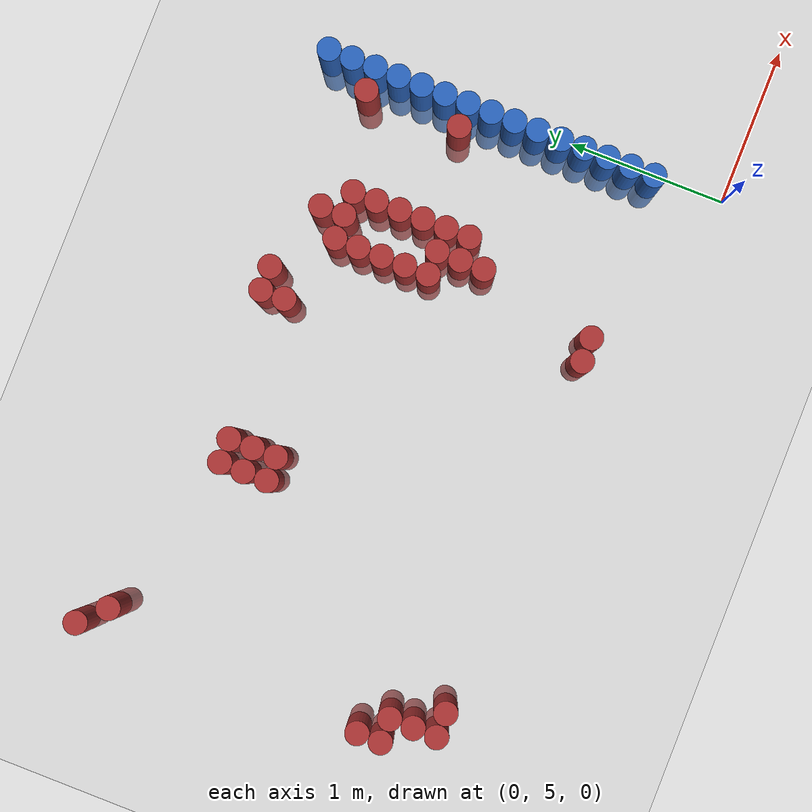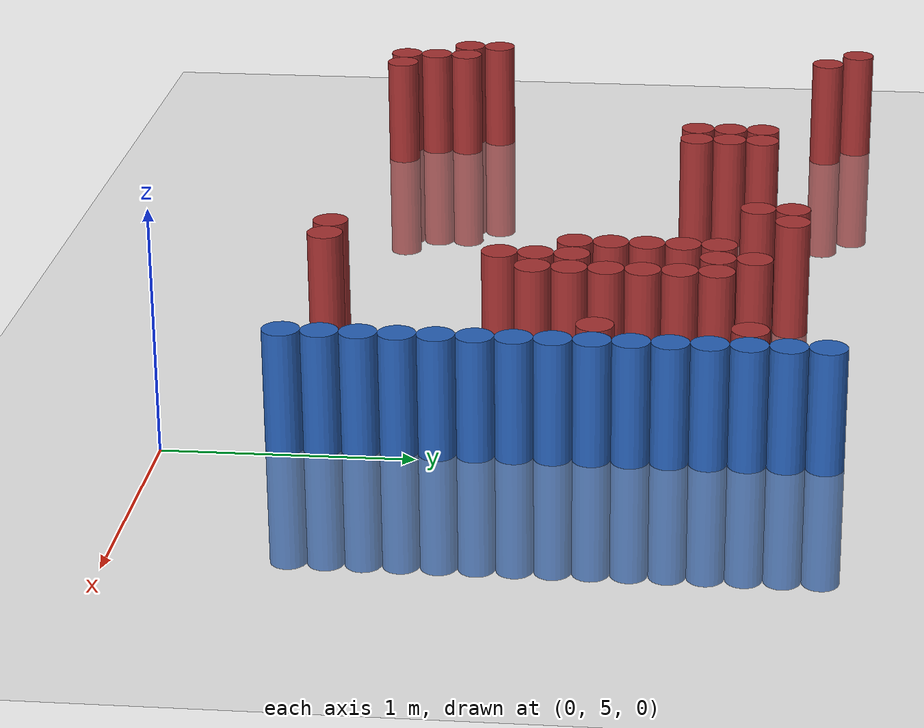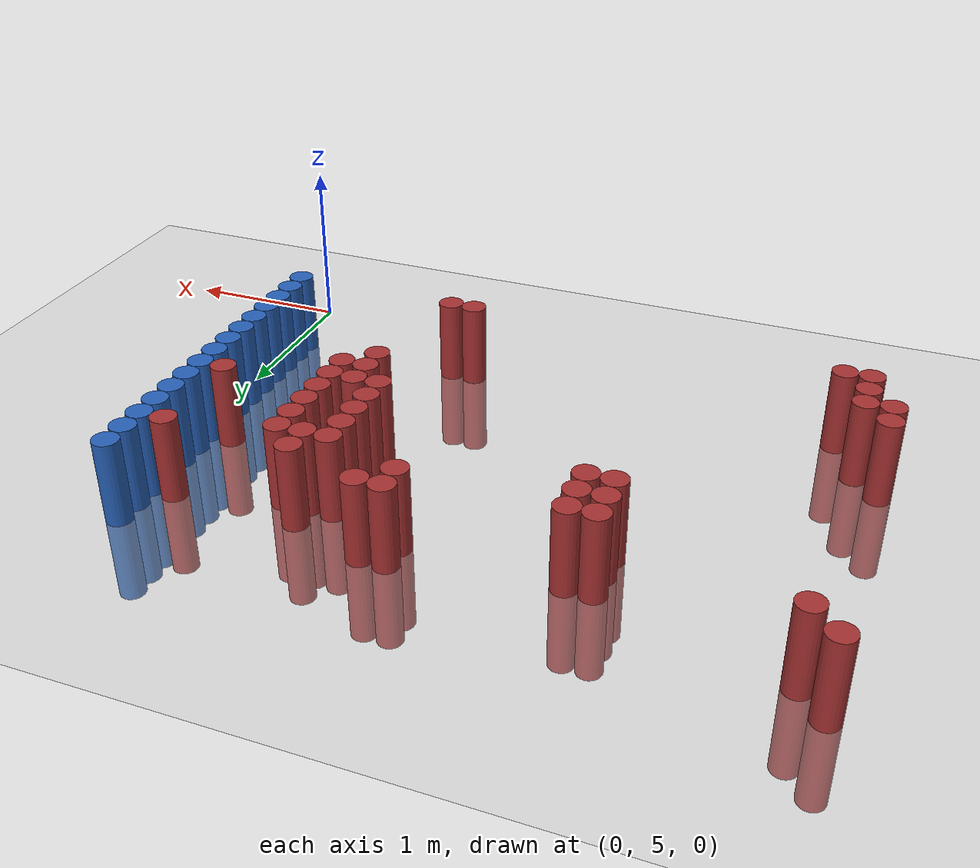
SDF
<sdf version="1.6">
 <world name="default">
  <model name="ground_plane">
   <static>1</static>
   <link name="link">
    <collision name="collision">
     <geometry><plane><normal>0 0 1</normal><size>100 100</size></plane></geometry>
     <surface><friction><ode><mu>100</mu><mu2>50</mu2></ode></friction></surface>
    </collision>
    <visual name="visual">
     <cast_shadows>0</cast_shadows>
     <geometry><plane><normal>0 0 1</normal><size>100 100</size></plane></geometry>
     <material>
      <script><uri>file://media/materials/scripts/gazebo.material</uri><name>Gazebo/Grey</name></script>
     </material>
    </visual>
   </link>
  </model>
  <model name="unit_cylinder_152">
   <static>1</static>
   <pose>-3.825000 5.775000 0.000000 0.000000 0.000000 0.000000</pose>
   <link name="link">
    <inertial>
     <mass>1</mass>
     <inertia><ixx>0.145833</ixx><ixy>0</ixy><ixz>0</ixz><iyy>0.145833</iyy><iyz>0</iyz><izz>0.125</izz></inertia>
    </inertial>
    <collision name="collision">
     <geometry><cylinder><radius>0.075000</radius><length>1</length></cylinder></geometry>
    </collision>
    <visual name="visual">
     <geometry><cylinder><radius>0.075000</radius><length>1</length></cylinder></geometry>
     <material>
      <ambient>0.648000 0.192000 0.192000 1</ambient>
      <diffuse>0.648000 0.192000 0.192000 1</diffuse>
     </material>
     <material>
      <script><name>Gazebo/Grey</name><uri>file://media/materials/scripts/gazebo.material</uri></script>
     </material>
    </visual>
   </link>
  </model>
  <model name="unit_cylinder_153">
   <static>1</static>
   <pose>-3.825000 5.925000 0.000000 0.000000 0.000000 0.000000</pose>
   <link name="link">
    <inertial>
     <mass>1</mass>
     <inertia><ixx>0.145833</ixx><ixy>0</ixy><ixz>0</ixz><iyy>0.145833</iyy><iyz>0</iyz><izz>0.125</izz></inertia>
    </inertial>
    <collision name="collision">
     <geometry><cylinder><radius>0.075000</radius><length>1</length></cylinder></geometry>
    </collision>
    <visual name="visual">
     <geometry><cylinder><radius>0.075000</radius><length>1</length></cylinder></geometry>
     <material>
      <ambient>0.648000 0.192000 0.192000 1</ambient>
      <diffuse>0.648000 0.192000 0.192000 1</diffuse>
     </material>
     <material>
      <script><name>Gazebo/Grey</name><uri>file://media/materials/scripts/gazebo.material</uri></script>
     </material>
    </visual>
   </link>
  </model>
  <model name="unit_cylinder_154">
   <static>1</static>
   <pose>-3.825000 7.725000 0.000000 0.000000 0.000000 0.000000</pose>
   <link name="link">
    <inertial>
     <mass>1</mass>
     <inertia><ixx>0.145833</ixx><ixy>0</ixy><ixz>0</ixz><iyy>0.145833</iyy><iyz>0</iyz><izz>0.125</izz></inertia>
    </inertial>
    <collision name="collision">
     <geometry><cylinder><radius>0.075000</radius><length>1</length></cylinder></geometry>
    </collision>
    <visual name="visual">
     <geometry><cylinder><radius>0.075000</radius><length>1</length></cylinder></geometry>
     <material>
      <ambient>0.648000 0.192000 0.192000 1</ambient>
      <diffuse>0.648000 0.192000 0.192000 1</diffuse>
     </material>
     <material>
      <script><name>Gazebo/Grey</name><uri>file://media/materials/scripts/gazebo.material</uri></script>
     </material>
    </visual>
   </link>
  </model>
  <model name="unit_cylinder_158">
   <static>1</static>
   <pose>-3.675000 5.475000 0.000000 0.000000 0.000000 0.000000</pose>
   <link name="link">
    <inertial>
     <mass>1</mass>
     <inertia><ixx>0.145833</ixx><ixy>0</ixy><ixz>0</ixz><iyy>0.145833</iyy><iyz>0</iyz><izz>0.125</izz></inertia>
    </inertial>
    <collision name="collision">
     <geometry><cylinder><radius>0.075000</radius><length>1</length></cylinder></geometry>
    </collision>
    <visual name="visual">
     <geometry><cylinder><radius>0.075000</radius><length>1</length></cylinder></geometry>
     <material>
      <ambient>0.648000 0.192000 0.192000 1</ambient>
      <diffuse>0.648000 0.192000 0.192000 1</diffuse>
     </material>
     <material>
      <script><name>Gazebo/Grey</name><uri>file://media/materials/scripts/gazebo.material</uri></script>
     </material>
    </visual>
   </link>
  </model>
  <model name="unit_cylinder_159">
   <static>1</static>
   <pose>-3.675000 5.625000 0.000000 0.000000 0.000000 0.000000</pose>
   <link name="link">
    <inertial>
     <mass>1</mass>
     <inertia><ixx>0.145833</ixx><ixy>0</ixy><ixz>0</ixz><iyy>0.145833</iyy><iyz>0</iyz><izz>0.125</izz></inertia>
    </inertial>
    <collision name="collision">
     <geometry><cylinder><radius>0.075000</radius><length>1</length></cylinder></geometry>
    </collision>
    <visual name="visual">
     <geometry><cylinder><radius>0.075000</radius><length>1</length></cylinder></geometry>
     <material>
      <ambient>0.648000 0.192000 0.192000 1</ambient>
      <diffuse>0.648000 0.192000 0.192000 1</diffuse>
     </material>
     <material>
      <script><name>Gazebo/Grey</name><uri>file://media/materials/scripts/gazebo.material</uri></script>
     </material>
    </visual>
   </link>
  </model>
  <model name="unit_cylinder_160">
   <static>1</static>
   <pose>-3.675000 5.775000 0.000000 0.000000 0.000000 0.000000</pose>
   <link name="link">
    <inertial>
     <mass>1</mass>
     <inertia><ixx>0.145833</ixx><ixy>0</ixy><ixz>0</ixz><iyy>0.145833</iyy><iyz>0</iyz><izz>0.125</izz></inertia>
    </inertial>
    <collision name="collision">
     <geometry><cylinder><radius>0.075000</radius><length>1</length></cylinder></geometry>
    </collision>
    <visual name="visual">
     <geometry><cylinder><radius>0.075000</radius><length>1</length></cylinder></geometry>
     <material>
      <ambient>0.648000 0.192000 0.192000 1</ambient>
      <diffuse>0.648000 0.192000 0.192000 1</diffuse>
     </material>
     <material>
      <script><name>Gazebo/Grey</name><uri>file://media/materials/scripts/gazebo.material</uri></script>
     </material>
    </visual>
   </link>
  </model>
  <model name="unit_cylinder_161">
   <static>1</static>
   <pose>-3.675000 7.575000 0.000000 0.000000 0.000000 0.000000</pose>
   <link name="link">
    <inertial>
     <mass>1</mass>
     <inertia><ixx>0.145833</ixx><ixy>0</ixy><ixz>0</ixz><iyy>0.145833</iyy><iyz>0</iyz><izz>0.125</izz></inertia>
    </inertial>
    <collision name="collision">
     <geometry><cylinder><radius>0.075000</radius><length>1</length></cylinder></geometry>
    </collision>
    <visual name="visual">
     <geometry><cylinder><radius>0.075000</radius><length>1</length></cylinder></geometry>
     <material>
      <ambient>0.648000 0.192000 0.192000 1</ambient>
      <diffuse>0.648000 0.192000 0.192000 1</diffuse>
     </material>
     <material>
      <script><name>Gazebo/Grey</name><uri>file://media/materials/scripts/gazebo.material</uri></script>
     </material>
    </visual>
   </link>
  </model>
  <model name="unit_cylinder_164">
   <static>1</static>
   <pose>-3.525000 5.475000 0.000000 0.000000 0.000000 0.000000</pose>
   <link name="link">
    <inertial>
     <mass>1</mass>
     <inertia><ixx>0.145833</ixx><ixy>0</ixy><ixz>0</ixz><iyy>0.145833</iyy><iyz>0</iyz><izz>0.125</izz></inertia>
    </inertial>
    <collision name="collision">
     <geometry><cylinder><radius>0.075000</radius><length>1</length></cylinder></geometry>
    </collision>
    <visual name="visual">
     <geometry><cylinder><radius>0.075000</radius><length>1</length></cylinder></geometry>
     <material>
      <ambient>0.648000 0.192000 0.192000 1</ambient>
      <diffuse>0.648000 0.192000 0.192000 1</diffuse>
     </material>
     <material>
      <script><name>Gazebo/Grey</name><uri>file://media/materials/scripts/gazebo.material</uri></script>
     </material>
    </visual>
   </link>
  </model>
  <model name="unit_cylinder_171">
   <static>1</static>
   <pose>-2.625000 6.975000 0.000000 0.000000 0.000000 0.000000</pose>
   <link name="link">
    <inertial>
     <mass>1</mass>
     <inertia><ixx>0.145833</ixx><ixy>0</ixy><ixz>0</ixz><iyy>0.145833</iyy><iyz>0</iyz><izz>0.125</izz></inertia>
    </inertial>
    <collision name="collision">
     <geometry><cylinder><radius>0.075000</radius><length>1</length></cylinder></geometry>
    </collision>
    <visual name="visual">
     <geometry><cylinder><radius>0.075000</radius><length>1</length></cylinder></geometry>
     <material>
      <ambient>0.648000 0.192000 0.192000 1</ambient>
      <diffuse>0.648000 0.192000 0.192000 1</diffuse>
     </material>
     <material>
      <script><name>Gazebo/Grey</name><uri>file://media/materials/scripts/gazebo.material</uri></script>
     </material>
    </visual>
   </link>
  </model>
  <model name="unit_cylinder_172">
   <static>1</static>
   <pose>-2.625000 7.125000 0.000000 0.000000 0.000000 0.000000</pose>
   <link name="link">
    <inertial>
     <mass>1</mass>
     <inertia><ixx>0.145833</ixx><ixy>0</ixy><ixz>0</ixz><iyy>0.145833</iyy><iyz>0</iyz><izz>0.125</izz></inertia>
    </inertial>
    <collision name="collision">
     <geometry><cylinder><radius>0.075000</radius><length>1</length></cylinder></geometry>
    </collision>
    <visual name="visual">
     <geometry><cylinder><radius>0.075000</radius><length>1</length></cylinder></geometry>
     <material>
      <ambient>0.648000 0.192000 0.192000 1</ambient>
      <diffuse>0.648000 0.192000 0.192000 1</diffuse>
     </material>
     <material>
      <script><name>Gazebo/Grey</name><uri>file://media/materials/scripts/gazebo.material</uri></script>
     </material>
    </visual>
   </link>
  </model>
  <model name="unit_cylinder_173">
   <static>1</static>
   <pose>-2.625000 7.275000 0.000000 0.000000 0.000000 0.000000</pose>
   <link name="link">
    <inertial>
     <mass>1</mass>
     <inertia><ixx>0.145833</ixx><ixy>0</ixy><ixz>0</ixz><iyy>0.145833</iyy><iyz>0</iyz><izz>0.125</izz></inertia>
    </inertial>
    <collision name="collision">
     <geometry><cylinder><radius>0.075000</radius><length>1</length></cylinder></geometry>
    </collision>
    <visual name="visual">
     <geometry><cylinder><radius>0.075000</radius><length>1</length></cylinder></geometry>
     <material>
      <ambient>0.648000 0.192000 0.192000 1</ambient>
      <diffuse>0.648000 0.192000 0.192000 1</diffuse>
     </material>
     <material>
      <script><name>Gazebo/Grey</name><uri>file://media/materials/scripts/gazebo.material</uri></script>
     </material>
    </visual>
   </link>
  </model>
  <model name="unit_cylinder_174">
   <static>1</static>
   <pose>-2.475000 6.975000 0.000000 0.000000 0.000000 0.000000</pose>
   <link name="link">
    <inertial>
     <mass>1</mass>
     <inertia><ixx>0.145833</ixx><ixy>0</ixy><ixz>0</ixz><iyy>0.145833</iyy><iyz>0</iyz><izz>0.125</izz></inertia>
    </inertial>
    <collision name="collision">
     <geometry><cylinder><radius>0.075000</radius><length>1</length></cylinder></geometry>
    </collision>
    <visual name="visual">
     <geometry><cylinder><radius>0.075000</radius><length>1</length></cylinder></geometry>
     <material>
      <ambient>0.648000 0.192000 0.192000 1</ambient>
      <diffuse>0.648000 0.192000 0.192000 1</diffuse>
     </material>
     <material>
      <script><name>Gazebo/Grey</name><uri>file://media/materials/scripts/gazebo.material</uri></script>
     </material>
    </visual>
   </link>
  </model>
  <model name="unit_cylinder_175">
   <static>1</static>
   <pose>-2.475000 7.125000 0.000000 0.000000 0.000000 0.000000</pose>
   <link name="link">
    <inertial>
     <mass>1</mass>
     <inertia><ixx>0.145833</ixx><ixy>0</ixy><ixz>0</ixz><iyy>0.145833</iyy><iyz>0</iyz><izz>0.125</izz></inertia>
    </inertial>
    <collision name="collision">
     <geometry><cylinder><radius>0.075000</radius><length>1</length></cylinder></geometry>
    </collision>
    <visual name="visual">
     <geometry><cylinder><radius>0.075000</radius><length>1</length></cylinder></geometry>
     <material>
      <ambient>0.648000 0.192000 0.192000 1</ambient>
      <diffuse>0.648000 0.192000 0.192000 1</diffuse>
     </material>
     <material>
      <script><name>Gazebo/Grey</name><uri>file://media/materials/scripts/gazebo.material</uri></script>
     </material>
    </visual>
   </link>
  </model>
  <model name="unit_cylinder_176">
   <static>1</static>
   <pose>-2.475000 7.275000 0.000000 0.000000 0.000000 0.000000</pose>
   <link name="link">
    <inertial>
     <mass>1</mass>
     <inertia><ixx>0.145833</ixx><ixy>0</ixy><ixz>0</ixz><iyy>0.145833</iyy><iyz>0</iyz><izz>0.125</izz></inertia>
    </inertial>
    <collision name="collision">
     <geometry><cylinder><radius>0.075000</radius><length>1</length></cylinder></geometry>
    </collision>
    <visual name="visual">
     <geometry><cylinder><radius>0.075000</radius><length>1</length></cylinder></geometry>
     <material>
      <ambient>0.648000 0.192000 0.192000 1</ambient>
      <diffuse>0.648000 0.192000 0.192000 1</diffuse>
     </material>
     <material>
      <script><name>Gazebo/Grey</name><uri>file://media/materials/scripts/gazebo.material</uri></script>
     </material>
    </visual>
   </link>
  </model>
  <model name="unit_cylinder_179">
   <static>1</static>
   <pose>-1.575000 7.275000 0.000000 0.000000 0.000000 0.000000</pose>
   <link name="link">
    <inertial>
     <mass>1</mass>
     <inertia><ixx>0.145833</ixx><ixy>0</ixy><ixz>0</ixz><iyy>0.145833</iyy><iyz>0</iyz><izz>0.125</izz></inertia>
    </inertial>
    <collision name="collision">
     <geometry><cylinder><radius>0.075000</radius><length>1</length></cylinder></geometry>
    </collision>
    <visual name="visual">
     <geometry><cylinder><radius>0.075000</radius><length>1</length></cylinder></geometry>
     <material>
      <ambient>0.648000 0.192000 0.192000 1</ambient>
      <diffuse>0.648000 0.192000 0.192000 1</diffuse>
     </material>
     <material>
      <script><name>Gazebo/Grey</name><uri>file://media/materials/scripts/gazebo.material</uri></script>
     </material>
    </visual>
   </link>
  </model>
  <model name="unit_cylinder_180">
   <static>1</static>
   <pose>-1.575000 7.425000 0.000000 0.000000 0.000000 0.000000</pose>
   <link name="link">
    <inertial>
     <mass>1</mass>
     <inertia><ixx>0.145833</ixx><ixy>0</ixy><ixz>0</ixz><iyy>0.145833</iyy><iyz>0</iyz><izz>0.125</izz></inertia>
    </inertial>
    <collision name="collision">
     <geometry><cylinder><radius>0.075000</radius><length>1</length></cylinder></geometry>
    </collision>
    <visual name="visual">
     <geometry><cylinder><radius>0.075000</radius><length>1</length></cylinder></geometry>
     <material>
      <ambient>0.648000 0.192000 0.192000 1</ambient>
      <diffuse>0.648000 0.192000 0.192000 1</diffuse>
     </material>
     <material>
      <script><name>Gazebo/Grey</name><uri>file://media/materials/scripts/gazebo.material</uri></script>
     </material>
    </visual>
   </link>
  </model>
  <model name="unit_cylinder_183">
   <static>1</static>
   <pose>-1.425000 7.425000 0.000000 0.000000 0.000000 0.000000</pose>
   <link name="link">
    <inertial>
     <mass>1</mass>
     <inertia><ixx>0.145833</ixx><ixy>0</ixy><ixz>0</ixz><iyy>0.145833</iyy><iyz>0</iyz><izz>0.125</izz></inertia>
    </inertial>
    <collision name="collision">
     <geometry><cylinder><radius>0.075000</radius><length>1</length></cylinder></geometry>
    </collision>
    <visual name="visual">
     <geometry><cylinder><radius>0.075000</radius><length>1</length></cylinder></geometry>
     <material>
      <ambient>0.648000 0.192000 0.192000 1</ambient>
      <diffuse>0.648000 0.192000 0.192000 1</diffuse>
     </material>
     <material>
      <script><name>Gazebo/Grey</name><uri>file://media/materials/scripts/gazebo.material</uri></script>
     </material>
    </visual>
   </link>
  </model>
  <model name="unit_cylinder_185">
   <static>1</static>
   <pose>-1.275000 5.475000 0.000000 0.000000 0.000000 0.000000</pose>
   <link name="link">
    <inertial>
     <mass>1</mass>
     <inertia><ixx>0.145833</ixx><ixy>0</ixy><ixz>0</ixz><iyy>0.145833</iyy><iyz>0</iyz><izz>0.125</izz></inertia>
    </inertial>
    <collision name="collision">
     <geometry><cylinder><radius>0.075000</radius><length>1</length></cylinder></geometry>
    </collision>
    <visual name="visual">
     <geometry><cylinder><radius>0.075000</radius><length>1</length></cylinder></geometry>
     <material>
      <ambient>0.648000 0.192000 0.192000 1</ambient>
      <diffuse>0.648000 0.192000 0.192000 1</diffuse>
     </material>
     <material>
      <script><name>Gazebo/Grey</name><uri>file://media/materials/scripts/gazebo.material</uri></script>
     </material>
    </visual>
   </link>
  </model>
  <model name="unit_cylinder_188">
   <static>1</static>
   <pose>-1.125000 5.475000 0.000000 0.000000 0.000000 0.000000</pose>
   <link name="link">
    <inertial>
     <mass>1</mass>
     <inertia><ixx>0.145833</ixx><ixy>0</ixy><ixz>0</ixz><iyy>0.145833</iyy><iyz>0</iyz><izz>0.125</izz></inertia>
    </inertial>
    <collision name="collision">
     <geometry><cylinder><radius>0.075000</radius><length>1</length></cylinder></geometry>
    </collision>
    <visual name="visual">
     <geometry><cylinder><radius>0.075000</radius><length>1</length></cylinder></geometry>
     <material>
      <ambient>0.648000 0.192000 0.192000 1</ambient>
      <diffuse>0.648000 0.192000 0.192000 1</diffuse>
     </material>
     <material>
      <script><name>Gazebo/Grey</name><uri>file://media/materials/scripts/gazebo.material</uri></script>
     </material>
    </visual>
   </link>
  </model>
  <model name="unit_cylinder_189">
   <static>1</static>
   <pose>-1.125000 6.525000 0.000000 0.000000 0.000000 0.000000</pose>
   <link name="link">
    <inertial>
     <mass>1</mass>
     <inertia><ixx>0.145833</ixx><ixy>0</ixy><ixz>0</ixz><iyy>0.145833</iyy><iyz>0</iyz><izz>0.125</izz></inertia>
    </inertial>
    <collision name="collision">
     <geometry><cylinder><radius>0.075000</radius><length>1</length></cylinder></geometry>
    </collision>
    <visual name="visual">
     <geometry><cylinder><radius>0.075000</radius><length>1</length></cylinder></geometry>
     <material>
      <ambient>0.648000 0.192000 0.192000 1</ambient>
      <diffuse>0.648000 0.192000 0.192000 1</diffuse>
     </material>
     <material>
      <script><name>Gazebo/Grey</name><uri>file://media/materials/scripts/gazebo.material</uri></script>
     </material>
    </visual>
   </link>
  </model>
  <model name="unit_cylinder_190">
   <static>1</static>
   <pose>-1.125000 6.675000 0.000000 0.000000 0.000000 0.000000</pose>
   <link name="link">
    <inertial>
     <mass>1</mass>
     <inertia><ixx>0.145833</ixx><ixy>0</ixy><ixz>0</ixz><iyy>0.145833</iyy><iyz>0</iyz><izz>0.125</izz></inertia>
    </inertial>
    <collision name="collision">
     <geometry><cylinder><radius>0.075000</radius><length>1</length></cylinder></geometry>
    </collision>
    <visual name="visual">
     <geometry><cylinder><radius>0.075000</radius><length>1</length></cylinder></geometry>
     <material>
      <ambient>0.648000 0.192000 0.192000 1</ambient>
      <diffuse>0.648000 0.192000 0.192000 1</diffuse>
     </material>
     <material>
      <script><name>Gazebo/Grey</name><uri>file://media/materials/scripts/gazebo.material</uri></script>
     </material>
    </visual>
   </link>
  </model>
  <model name="unit_cylinder_191">
   <static>1</static>
   <pose>-1.125000 6.825000 0.000000 0.000000 0.000000 0.000000</pose>
   <link name="link">
    <inertial>
     <mass>1</mass>
     <inertia><ixx>0.145833</ixx><ixy>0</ixy><ixz>0</ixz><iyy>0.145833</iyy><iyz>0</iyz><izz>0.125</izz></inertia>
    </inertial>
    <collision name="collision">
     <geometry><cylinder><radius>0.075000</radius><length>1</length></cylinder></geometry>
    </collision>
    <visual name="visual">
     <geometry><cylinder><radius>0.075000</radius><length>1</length></cylinder></geometry>
     <material>
      <ambient>0.648000 0.192000 0.192000 1</ambient>
      <diffuse>0.648000 0.192000 0.192000 1</diffuse>
     </material>
     <material>
      <script><name>Gazebo/Grey</name><uri>file://media/materials/scripts/gazebo.material</uri></script>
     </material>
    </visual>
   </link>
  </model>
  <model name="unit_cylinder_192">
   <static>1</static>
   <pose>-1.125000 6.975000 0.000000 0.000000 0.000000 0.000000</pose>
   <link name="link">
    <inertial>
     <mass>1</mass>
     <inertia><ixx>0.145833</ixx><ixy>0</ixy><ixz>0</ixz><iyy>0.145833</iyy><iyz>0</iyz><izz>0.125</izz></inertia>
    </inertial>
    <collision name="collision">
     <geometry><cylinder><radius>0.075000</radius><length>1</length></cylinder></geometry>
    </collision>
    <visual name="visual">
     <geometry><cylinder><radius>0.075000</radius><length>1</length></cylinder></geometry>
     <material>
      <ambient>0.648000 0.192000 0.192000 1</ambient>
      <diffuse>0.648000 0.192000 0.192000 1</diffuse>
     </material>
     <material>
      <script><name>Gazebo/Grey</name><uri>file://media/materials/scripts/gazebo.material</uri></script>
     </material>
    </visual>
   </link>
  </model>
  <model name="unit_cylinder_193">
   <static>1</static>
   <pose>-1.125000 7.125000 0.000000 0.000000 0.000000 0.000000</pose>
   <link name="link">
    <inertial>
     <mass>1</mass>
     <inertia><ixx>0.145833</ixx><ixy>0</ixy><ixz>0</ixz><iyy>0.145833</iyy><iyz>0</iyz><izz>0.125</izz></inertia>
    </inertial>
    <collision name="collision">
     <geometry><cylinder><radius>0.075000</radius><length>1</length></cylinder></geometry>
    </collision>
    <visual name="visual">
     <geometry><cylinder><radius>0.075000</radius><length>1</length></cylinder></geometry>
     <material>
      <ambient>0.648000 0.192000 0.192000 1</ambient>
      <diffuse>0.648000 0.192000 0.192000 1</diffuse>
     </material>
     <material>
      <script><name>Gazebo/Grey</name><uri>file://media/materials/scripts/gazebo.material</uri></script>
     </material>
    </visual>
   </link>
  </model>
  <model name="unit_cylinder_196">
   <static>1</static>
   <pose>-0.975000 6.225000 0.000000 0.000000 0.000000 0.000000</pose>
   <link name="link">
    <inertial>
     <mass>1</mass>
     <inertia><ixx>0.145833</ixx><ixy>0</ixy><ixz>0</ixz><iyy>0.145833</iyy><iyz>0</iyz><izz>0.125</izz></inertia>
    </inertial>
    <collision name="collision">
     <geometry><cylinder><radius>0.075000</radius><length>1</length></cylinder></geometry>
    </collision>
    <visual name="visual">
     <geometry><cylinder><radius>0.075000</radius><length>1</length></cylinder></geometry>
     <material>
      <ambient>0.648000 0.192000 0.192000 1</ambient>
      <diffuse>0.648000 0.192000 0.192000 1</diffuse>
     </material>
     <material>
      <script><name>Gazebo/Grey</name><uri>file://media/materials/scripts/gazebo.material</uri></script>
     </material>
    </visual>
   </link>
  </model>
  <model name="unit_cylinder_197">
   <static>1</static>
   <pose>-0.975000 6.375000 0.000000 0.000000 0.000000 0.000000</pose>
   <link name="link">
    <inertial>
     <mass>1</mass>
     <inertia><ixx>0.145833</ixx><ixy>0</ixy><ixz>0</ixz><iyy>0.145833</iyy><iyz>0</iyz><izz>0.125</izz></inertia>
    </inertial>
    <collision name="collision">
     <geometry><cylinder><radius>0.075000</radius><length>1</length></cylinder></geometry>
    </collision>
    <visual name="visual">
     <geometry><cylinder><radius>0.075000</radius><length>1</length></cylinder></geometry>
     <material>
      <ambient>0.648000 0.192000 0.192000 1</ambient>
      <diffuse>0.648000 0.192000 0.192000 1</diffuse>
     </material>
     <material>
      <script><name>Gazebo/Grey</name><uri>file://media/materials/scripts/gazebo.material</uri></script>
     </material>
    </visual>
   </link>
  </model>
  <model name="unit_cylinder_198">
   <static>1</static>
   <pose>-0.975000 6.525000 0.000000 0.000000 0.000000 0.000000</pose>
   <link name="link">
    <inertial>
     <mass>1</mass>
     <inertia><ixx>0.145833</ixx><ixy>0</ixy><ixz>0</ixz><iyy>0.145833</iyy><iyz>0</iyz><izz>0.125</izz></inertia>
    </inertial>
    <collision name="collision">
     <geometry><cylinder><radius>0.075000</radius><length>1</length></cylinder></geometry>
    </collision>
    <visual name="visual">
     <geometry><cylinder><radius>0.075000</radius><length>1</length></cylinder></geometry>
     <material>
      <ambient>0.648000 0.192000 0.192000 1</ambient>
      <diffuse>0.648000 0.192000 0.192000 1</diffuse>
     </material>
     <material>
      <script><name>Gazebo/Grey</name><uri>file://media/materials/scripts/gazebo.material</uri></script>
     </material>
    </visual>
   </link>
  </model>
  <model name="unit_cylinder_199">
   <static>1</static>
   <pose>-0.975000 7.125000 0.000000 0.000000 0.000000 0.000000</pose>
   <link name="link">
    <inertial>
     <mass>1</mass>
     <inertia><ixx>0.145833</ixx><ixy>0</ixy><ixz>0</ixz><iyy>0.145833</iyy><iyz>0</iyz><izz>0.125</izz></inertia>
    </inertial>
    <collision name="collision">
     <geometry><cylinder><radius>0.075000</radius><length>1</length></cylinder></geometry>
    </collision>
    <visual name="visual">
     <geometry><cylinder><radius>0.075000</radius><length>1</length></cylinder></geometry>
     <material>
      <ambient>0.648000 0.192000 0.192000 1</ambient>
      <diffuse>0.648000 0.192000 0.192000 1</diffuse>
     </material>
     <material>
      <script><name>Gazebo/Grey</name><uri>file://media/materials/scripts/gazebo.material</uri></script>
     </material>
    </visual>
   </link>
  </model>
  <model name="unit_cylinder_200">
   <static>1</static>
   <pose>-0.975000 7.275000 0.000000 0.000000 0.000000 0.000000</pose>
   <link name="link">
    <inertial>
     <mass>1</mass>
     <inertia><ixx>0.145833</ixx><ixy>0</ixy><ixz>0</ixz><iyy>0.145833</iyy><iyz>0</iyz><izz>0.125</izz></inertia>
    </inertial>
    <collision name="collision">
     <geometry><cylinder><radius>0.075000</radius><length>1</length></cylinder></geometry>
    </collision>
    <visual name="visual">
     <geometry><cylinder><radius>0.075000</radius><length>1</length></cylinder></geometry>
     <material>
      <ambient>0.648000 0.192000 0.192000 1</ambient>
      <diffuse>0.648000 0.192000 0.192000 1</diffuse>
     </material>
     <material>
      <script><name>Gazebo/Grey</name><uri>file://media/materials/scripts/gazebo.material</uri></script>
     </material>
    </visual>
   </link>
  </model>
  <model name="unit_cylinder_201">
   <static>1</static>
   <pose>-0.825000 6.375000 0.000000 0.000000 0.000000 0.000000</pose>
   <link name="link">
    <inertial>
     <mass>1</mass>
     <inertia><ixx>0.145833</ixx><ixy>0</ixy><ixz>0</ixz><iyy>0.145833</iyy><iyz>0</iyz><izz>0.125</izz></inertia>
    </inertial>
    <collision name="collision">
     <geometry><cylinder><radius>0.075000</radius><length>1</length></cylinder></geometry>
    </collision>
    <visual name="visual">
     <geometry><cylinder><radius>0.075000</radius><length>1</length></cylinder></geometry>
     <material>
      <ambient>0.648000 0.192000 0.192000 1</ambient>
      <diffuse>0.648000 0.192000 0.192000 1</diffuse>
     </material>
     <material>
      <script><name>Gazebo/Grey</name><uri>file://media/materials/scripts/gazebo.material</uri></script>
     </material>
    </visual>
   </link>
  </model>
  <model name="unit_cylinder_202">
   <static>1</static>
   <pose>-0.825000 6.525000 0.000000 0.000000 0.000000 0.000000</pose>
   <link name="link">
    <inertial>
     <mass>1</mass>
     <inertia><ixx>0.145833</ixx><ixy>0</ixy><ixz>0</ixz><iyy>0.145833</iyy><iyz>0</iyz><izz>0.125</izz></inertia>
    </inertial>
    <collision name="collision">
     <geometry><cylinder><radius>0.075000</radius><length>1</length></cylinder></geometry>
    </collision>
    <visual name="visual">
     <geometry><cylinder><radius>0.075000</radius><length>1</length></cylinder></geometry>
     <material>
      <ambient>0.648000 0.192000 0.192000 1</ambient>
      <diffuse>0.648000 0.192000 0.192000 1</diffuse>
     </material>
     <material>
      <script><name>Gazebo/Grey</name><uri>file://media/materials/scripts/gazebo.material</uri></script>
     </material>
    </visual>
   </link>
  </model>
  <model name="unit_cylinder_203">
   <static>1</static>
   <pose>-0.825000 6.675000 0.000000 0.000000 0.000000 0.000000</pose>
   <link name="link">
    <inertial>
     <mass>1</mass>
     <inertia><ixx>0.145833</ixx><ixy>0</ixy><ixz>0</ixz><iyy>0.145833</iyy><iyz>0</iyz><izz>0.125</izz></inertia>
    </inertial>
    <collision name="collision">
     <geometry><cylinder><radius>0.075000</radius><length>1</length></cylinder></geometry>
    </collision>
    <visual name="visual">
     <geometry><cylinder><radius>0.075000</radius><length>1</length></cylinder></geometry>
     <material>
      <ambient>0.648000 0.192000 0.192000 1</ambient>
      <diffuse>0.648000 0.192000 0.192000 1</diffuse>
     </material>
     <material>
      <script><name>Gazebo/Grey</name><uri>file://media/materials/scripts/gazebo.material</uri></script>
     </material>
    </visual>
   </link>
  </model>
  <model name="unit_cylinder_204">
   <static>1</static>
   <pose>-0.825000 6.825000 0.000000 0.000000 0.000000 0.000000</pose>
   <link name="link">
    <inertial>
     <mass>1</mass>
     <inertia><ixx>0.145833</ixx><ixy>0</ixy><ixz>0</ixz><iyy>0.145833</iyy><iyz>0</iyz><izz>0.125</izz></inertia>
    </inertial>
    <collision name="collision">
     <geometry><cylinder><radius>0.075000</radius><length>1</length></cylinder></geometry>
    </collision>
    <visual name="visual">
     <geometry><cylinder><radius>0.075000</radius><length>1</length></cylinder></geometry>
     <material>
      <ambient>0.648000 0.192000 0.192000 1</ambient>
      <diffuse>0.648000 0.192000 0.192000 1</diffuse>
     </material>
     <material>
      <script><name>Gazebo/Grey</name><uri>file://media/materials/scripts/gazebo.material</uri></script>
     </material>
    </visual>
   </link>
  </model>
  <model name="unit_cylinder_205">
   <static>1</static>
   <pose>-0.825000 6.975000 0.000000 0.000000 0.000000 0.000000</pose>
   <link name="link">
    <inertial>
     <mass>1</mass>
     <inertia><ixx>0.145833</ixx><ixy>0</ixy><ixz>0</ixz><iyy>0.145833</iyy><iyz>0</iyz><izz>0.125</izz></inertia>
    </inertial>
    <collision name="collision">
     <geometry><cylinder><radius>0.075000</radius><length>1</length></cylinder></geometry>
    </collision>
    <visual name="visual">
     <geometry><cylinder><radius>0.075000</radius><length>1</length></cylinder></geometry>
     <material>
      <ambient>0.648000 0.192000 0.192000 1</ambient>
      <diffuse>0.648000 0.192000 0.192000 1</diffuse>
     </material>
     <material>
      <script><name>Gazebo/Grey</name><uri>file://media/materials/scripts/gazebo.material</uri></script>
     </material>
    </visual>
   </link>
  </model>
  <model name="unit_cylinder_206">
   <static>1</static>
   <pose>-0.825000 7.125000 0.000000 0.000000 0.000000 0.000000</pose>
   <link name="link">
    <inertial>
     <mass>1</mass>
     <inertia><ixx>0.145833</ixx><ixy>0</ixy><ixz>0</ixz><iyy>0.145833</iyy><iyz>0</iyz><izz>0.125</izz></inertia>
    </inertial>
    <collision name="collision">
     <geometry><cylinder><radius>0.075000</radius><length>1</length></cylinder></geometry>
    </collision>
    <visual name="visual">
     <geometry><cylinder><radius>0.075000</radius><length>1</length></cylinder></geometry>
     <material>
      <ambient>0.648000 0.192000 0.192000 1</ambient>
      <diffuse>0.648000 0.192000 0.192000 1</diffuse>
     </material>
     <material>
      <script><name>Gazebo/Grey</name><uri>file://media/materials/scripts/gazebo.material</uri></script>
     </material>
    </visual>
   </link>
  </model>
  <model name="unit_cylinder_221">
   <static>1</static>
   <pose>-0.225000 6.675000 0.000000 0.000000 0.000000 0.000000</pose>
   <link name="link">
    <inertial>
     <mass>1</mass>
     <inertia><ixx>0.145833</ixx><ixy>0</ixy><ixz>0</ixz><iyy>0.145833</iyy><iyz>0</iyz><izz>0.125</izz></inertia>
    </inertial>
    <collision name="collision">
     <geometry><cylinder><radius>0.075000</radius><length>1</length></cylinder></geometry>
    </collision>
    <visual name="visual">
     <geometry><cylinder><radius>0.075000</radius><length>1</length></cylinder></geometry>
     <material>
      <ambient>0.648000 0.192000 0.192000 1</ambient>
      <diffuse>0.648000 0.192000 0.192000 1</diffuse>
     </material>
     <material>
      <script><name>Gazebo/Grey</name><uri>file://media/materials/scripts/gazebo.material</uri></script>
     </material>
    </visual>
   </link>
  </model>
  <model name="unit_cylinder_222">
   <static>1</static>
   <pose>-0.225000 7.275000 0.000000 0.000000 0.000000 0.000000</pose>
   <link name="link">
    <inertial>
     <mass>1</mass>
     <inertia><ixx>0.145833</ixx><ixy>0</ixy><ixz>0</ixz><iyy>0.145833</iyy><iyz>0</iyz><izz>0.125</izz></inertia>
    </inertial>
    <collision name="collision">
     <geometry><cylinder><radius>0.075000</radius><length>1</length></cylinder></geometry>
    </collision>
    <visual name="visual">
     <geometry><cylinder><radius>0.075000</radius><length>1</length></cylinder></geometry>
     <material>
      <ambient>0.648000 0.192000 0.192000 1</ambient>
      <diffuse>0.648000 0.192000 0.192000 1</diffuse>
     </material>
     <material>
      <script><name>Gazebo/Grey</name><uri>file://media/materials/scripts/gazebo.material</uri></script>
     </material>
    </visual>
   </link>
  </model>
  <model name="unit_cylinder_232">
   <static>1</static>
   <pose>-0.075000 5.475000 0.000000 0.000000 0.000000 0.000000</pose>
   <link name="link">
    <inertial>
     <mass>1</mass>
     <inertia><ixx>0.145833</ixx><ixy>0</ixy><ixz>0</ixz><iyy>0.145833</iyy><iyz>0</iyz><izz>0.125</izz></inertia>
    </inertial>
    <collision name="collision">
     <geometry><cylinder><radius>0.075000</radius><length>1</length></cylinder></geometry>
    </collision>
    <visual name="visual">
     <geometry><cylinder><radius>0.075000</radius><length>1</length></cylinder></geometry>
     <material>
      <ambient>0.152000 0.379000 0.720000 1</ambient>
      <diffuse>0.152000 0.379000 0.720000 1</diffuse>
     </material>
     <material>
      <script><name>Gazebo/Grey</name><uri>file://media/materials/scripts/gazebo.material</uri></script>
     </material>
    </visual>
   </link>
  </model>
  <model name="unit_cylinder_233">
   <static>1</static>
   <pose>-0.075000 5.625000 0.000000 0.000000 0.000000 0.000000</pose>
   <link name="link">
    <inertial>
     <mass>1</mass>
     <inertia><ixx>0.145833</ixx><ixy>0</ixy><ixz>0</ixz><iyy>0.145833</iyy><iyz>0</iyz><izz>0.125</izz></inertia>
    </inertial>
    <collision name="collision">
     <geometry><cylinder><radius>0.075000</radius><length>1</length></cylinder></geometry>
    </collision>
    <visual name="visual">
     <geometry><cylinder><radius>0.075000</radius><length>1</length></cylinder></geometry>
     <material>
      <ambient>0.152000 0.379000 0.720000 1</ambient>
      <diffuse>0.152000 0.379000 0.720000 1</diffuse>
     </material>
     <material>
      <script><name>Gazebo/Grey</name><uri>file://media/materials/scripts/gazebo.material</uri></script>
     </material>
    </visual>
   </link>
  </model>
  <model name="unit_cylinder_234">
   <static>1</static>
   <pose>-0.075000 5.775000 0.000000 0.000000 0.000000 0.000000</pose>
   <link name="link">
    <inertial>
     <mass>1</mass>
     <inertia><ixx>0.145833</ixx><ixy>0</ixy><ixz>0</ixz><iyy>0.145833</iyy><iyz>0</iyz><izz>0.125</izz></inertia>
    </inertial>
    <collision name="collision">
     <geometry><cylinder><radius>0.075000</radius><length>1</length></cylinder></geometry>
    </collision>
    <visual name="visual">
     <geometry><cylinder><radius>0.075000</radius><length>1</length></cylinder></geometry>
     <material>
      <ambient>0.152000 0.379000 0.720000 1</ambient>
      <diffuse>0.152000 0.379000 0.720000 1</diffuse>
     </material>
     <material>
      <script><name>Gazebo/Grey</name><uri>file://media/materials/scripts/gazebo.material</uri></script>
     </material>
    </visual>
   </link>
  </model>
  <model name="unit_cylinder_235">
   <static>1</static>
   <pose>-0.075000 5.925000 0.000000 0.000000 0.000000 0.000000</pose>
   <link name="link">
    <inertial>
     <mass>1</mass>
     <inertia><ixx>0.145833</ixx><ixy>0</ixy><ixz>0</ixz><iyy>0.145833</iyy><iyz>0</iyz><izz>0.125</izz></inertia>
    </inertial>
    <collision name="collision">
     <geometry><cylinder><radius>0.075000</radius><length>1</length></cylinder></geometry>
    </collision>
    <visual name="visual">
     <geometry><cylinder><radius>0.075000</radius><length>1</length></cylinder></geometry>
     <material>
      <ambient>0.152000 0.379000 0.720000 1</ambient>
      <diffuse>0.152000 0.379000 0.720000 1</diffuse>
     </material>
     <material>
      <script><name>Gazebo/Grey</name><uri>file://media/materials/scripts/gazebo.material</uri></script>
     </material>
    </visual>
   </link>
  </model>
  <model name="unit_cylinder_236">
   <static>1</static>
   <pose>-0.075000 6.075000 0.000000 0.000000 0.000000 0.000000</pose>
   <link name="link">
    <inertial>
     <mass>1</mass>
     <inertia><ixx>0.145833</ixx><ixy>0</ixy><ixz>0</ixz><iyy>0.145833</iyy><iyz>0</iyz><izz>0.125</izz></inertia>
    </inertial>
    <collision name="collision">
     <geometry><cylinder><radius>0.075000</radius><length>1</length></cylinder></geometry>
    </collision>
    <visual name="visual">
     <geometry><cylinder><radius>0.075000</radius><length>1</length></cylinder></geometry>
     <material>
      <ambient>0.152000 0.379000 0.720000 1</ambient>
      <diffuse>0.152000 0.379000 0.720000 1</diffuse>
     </material>
     <material>
      <script><name>Gazebo/Grey</name><uri>file://media/materials/scripts/gazebo.material</uri></script>
     </material>
    </visual>
   </link>
  </model>
  <model name="unit_cylinder_237">
   <static>1</static>
   <pose>-0.075000 6.225000 0.000000 0.000000 0.000000 0.000000</pose>
   <link name="link">
    <inertial>
     <mass>1</mass>
     <inertia><ixx>0.145833</ixx><ixy>0</ixy><ixz>0</ixz><iyy>0.145833</iyy><iyz>0</iyz><izz>0.125</izz></inertia>
    </inertial>
    <collision name="collision">
     <geometry><cylinder><radius>0.075000</radius><length>1</length></cylinder></geometry>
    </collision>
    <visual name="visual">
     <geometry><cylinder><radius>0.075000</radius><length>1</length></cylinder></geometry>
     <material>
      <ambient>0.152000 0.379000 0.720000 1</ambient>
      <diffuse>0.152000 0.379000 0.720000 1</diffuse>
     </material>
     <material>
      <script><name>Gazebo/Grey</name><uri>file://media/materials/scripts/gazebo.material</uri></script>
     </material>
    </visual>
   </link>
  </model>
  <model name="unit_cylinder_238">
   <static>1</static>
   <pose>-0.075000 6.375000 0.000000 0.000000 0.000000 0.000000</pose>
   <link name="link">
    <inertial>
     <mass>1</mass>
     <inertia><ixx>0.145833</ixx><ixy>0</ixy><ixz>0</ixz><iyy>0.145833</iyy><iyz>0</iyz><izz>0.125</izz></inertia>
    </inertial>
    <collision name="collision">
     <geometry><cylinder><radius>0.075000</radius><length>1</length></cylinder></geometry>
    </collision>
    <visual name="visual">
     <geometry><cylinder><radius>0.075000</radius><length>1</length></cylinder></geometry>
     <material>
      <ambient>0.152000 0.379000 0.720000 1</ambient>
      <diffuse>0.152000 0.379000 0.720000 1</diffuse>
     </material>
     <material>
      <script><name>Gazebo/Grey</name><uri>file://media/materials/scripts/gazebo.material</uri></script>
     </material>
    </visual>
   </link>
  </model>
  <model name="unit_cylinder_239">
   <static>1</static>
   <pose>-0.075000 6.525000 0.000000 0.000000 0.000000 0.000000</pose>
   <link name="link">
    <inertial>
     <mass>1</mass>
     <inertia><ixx>0.145833</ixx><ixy>0</ixy><ixz>0</ixz><iyy>0.145833</iyy><iyz>0</iyz><izz>0.125</izz></inertia>
    </inertial>
    <collision name="collision">
     <geometry><cylinder><radius>0.075000</radius><length>1</length></cylinder></geometry>
    </collision>
    <visual name="visual">
     <geometry><cylinder><radius>0.075000</radius><length>1</length></cylinder></geometry>
     <material>
      <ambient>0.152000 0.379000 0.720000 1</ambient>
      <diffuse>0.152000 0.379000 0.720000 1</diffuse>
     </material>
     <material>
      <script><name>Gazebo/Grey</name><uri>file://media/materials/scripts/gazebo.material</uri></script>
     </material>
    </visual>
   </link>
  </model>
  <model name="unit_cylinder_240">
   <static>1</static>
   <pose>-0.075000 6.675000 0.000000 0.000000 0.000000 0.000000</pose>
   <link name="link">
    <inertial>
     <mass>1</mass>
     <inertia><ixx>0.145833</ixx><ixy>0</ixy><ixz>0</ixz><iyy>0.145833</iyy><iyz>0</iyz><izz>0.125</izz></inertia>
    </inertial>
    <collision name="collision">
     <geometry><cylinder><radius>0.075000</radius><length>1</length></cylinder></geometry>
    </collision>
    <visual name="visual">
     <geometry><cylinder><radius>0.075000</radius><length>1</length></cylinder></geometry>
     <material>
      <ambient>0.152000 0.379000 0.720000 1</ambient>
      <diffuse>0.152000 0.379000 0.720000 1</diffuse>
     </material>
     <material>
      <script><name>Gazebo/Grey</name><uri>file://media/materials/scripts/gazebo.material</uri></script>
     </material>
    </visual>
   </link>
  </model>
  <model name="unit_cylinder_241">
   <static>1</static>
   <pose>-0.075000 6.825000 0.000000 0.000000 0.000000 0.000000</pose>
   <link name="link">
    <inertial>
     <mass>1</mass>
     <inertia><ixx>0.145833</ixx><ixy>0</ixy><ixz>0</ixz><iyy>0.145833</iyy><iyz>0</iyz><izz>0.125</izz></inertia>
    </inertial>
    <collision name="collision">
     <geometry><cylinder><radius>0.075000</radius><length>1</length></cylinder></geometry>
    </collision>
    <visual name="visual">
     <geometry><cylinder><radius>0.075000</radius><length>1</length></cylinder></geometry>
     <material>
      <ambient>0.152000 0.379000 0.720000 1</ambient>
      <diffuse>0.152000 0.379000 0.720000 1</diffuse>
     </material>
     <material>
      <script><name>Gazebo/Grey</name><uri>file://media/materials/scripts/gazebo.material</uri></script>
     </material>
    </visual>
   </link>
  </model>
  <model name="unit_cylinder_242">
   <static>1</static>
   <pose>-0.075000 6.975000 0.000000 0.000000 0.000000 0.000000</pose>
   <link name="link">
    <inertial>
     <mass>1</mass>
     <inertia><ixx>0.145833</ixx><ixy>0</ixy><ixz>0</ixz><iyy>0.145833</iyy><iyz>0</iyz><izz>0.125</izz></inertia>
    </inertial>
    <collision name="collision">
     <geometry><cylinder><radius>0.075000</radius><length>1</length></cylinder></geometry>
    </collision>
    <visual name="visual">
     <geometry><cylinder><radius>0.075000</radius><length>1</length></cylinder></geometry>
     <material>
      <ambient>0.152000 0.379000 0.720000 1</ambient>
      <diffuse>0.152000 0.379000 0.720000 1</diffuse>
     </material>
     <material>
      <script><name>Gazebo/Grey</name><uri>file://media/materials/scripts/gazebo.material</uri></script>
     </material>
    </visual>
   </link>
  </model>
  <model name="unit_cylinder_243">
   <static>1</static>
   <pose>-0.075000 7.125000 0.000000 0.000000 0.000000 0.000000</pose>
   <link name="link">
    <inertial>
     <mass>1</mass>
     <inertia><ixx>0.145833</ixx><ixy>0</ixy><ixz>0</ixz><iyy>0.145833</iyy><iyz>0</iyz><izz>0.125</izz></inertia>
    </inertial>
    <collision name="collision">
     <geometry><cylinder><radius>0.075000</radius><length>1</length></cylinder></geometry>
    </collision>
    <visual name="visual">
     <geometry><cylinder><radius>0.075000</radius><length>1</length></cylinder></geometry>
     <material>
      <ambient>0.152000 0.379000 0.720000 1</ambient>
      <diffuse>0.152000 0.379000 0.720000 1</diffuse>
     </material>
     <material>
      <script><name>Gazebo/Grey</name><uri>file://media/materials/scripts/gazebo.material</uri></script>
     </material>
    </visual>
   </link>
  </model>
  <model name="unit_cylinder_244">
   <static>1</static>
   <pose>-0.075000 7.275000 0.000000 0.000000 0.000000 0.000000</pose>
   <link name="link">
    <inertial>
     <mass>1</mass>
     <inertia><ixx>0.145833</ixx><ixy>0</ixy><ixz>0</ixz><iyy>0.145833</iyy><iyz>0</iyz><izz>0.125</izz></inertia>
    </inertial>
    <collision name="collision">
     <geometry><cylinder><radius>0.075000</radius><length>1</length></cylinder></geometry>
    </collision>
    <visual name="visual">
     <geometry><cylinder><radius>0.075000</radius><length>1</length></cylinder></geometry>
     <material>
      <ambient>0.152000 0.379000 0.720000 1</ambient>
      <diffuse>0.152000 0.379000 0.720000 1</diffuse>
     </material>
     <material>
      <script><name>Gazebo/Grey</name><uri>file://media/materials/scripts/gazebo.material</uri></script>
     </material>
    </visual>
   </link>
  </model>
  <model name="unit_cylinder_245">
   <static>1</static>
   <pose>-0.075000 7.425000 0.000000 0.000000 0.000000 0.000000</pose>
   <link name="link">
    <inertial>
     <mass>1</mass>
     <inertia><ixx>0.145833</ixx><ixy>0</ixy><ixz>0</ixz><iyy>0.145833</iyy><iyz>0</iyz><izz>0.125</izz></inertia>
    </inertial>
    <collision name="collision">
     <geometry><cylinder><radius>0.075000</radius><length>1</length></cylinder></geometry>
    </collision>
    <visual name="visual">
     <geometry><cylinder><radius>0.075000</radius><length>1</length></cylinder></geometry>
     <material>
      <ambient>0.152000 0.379000 0.720000 1</ambient>
      <diffuse>0.152000 0.379000 0.720000 1</diffuse>
     </material>
     <material>
      <script><name>Gazebo/Grey</name><uri>file://media/materials/scripts/gazebo.material</uri></script>
     </material>
    </visual>
   </link>
  </model>
  <model name="unit_cylinder_246">
   <static>1</static>
   <pose>-0.075000 7.575000 0.000000 0.000000 0.000000 0.000000</pose>
   <link name="link">
    <inertial>
     <mass>1</mass>
     <inertia><ixx>0.145833</ixx><ixy>0</ixy><ixz>0</ixz><iyy>0.145833</iyy><iyz>0</iyz><izz>0.125</izz></inertia>
    </inertial>
    <collision name="collision">
     <geometry><cylinder><radius>0.075000</radius><length>1</length></cylinder></geometry>
    </collision>
    <visual name="visual">
     <geometry><cylinder><radius>0.075000</radius><length>1</length></cylinder></geometry>
     <material>
      <ambient>0.152000 0.379000 0.720000 1</ambient>
      <diffuse>0.152000 0.379000 0.720000 1</diffuse>
     </material>
     <material>
      <script><name>Gazebo/Grey</name><uri>file://media/materials/scripts/gazebo.material</uri></script>
     </material>
    </visual>
   </link>
  </model>
 </world>
</sdf>
